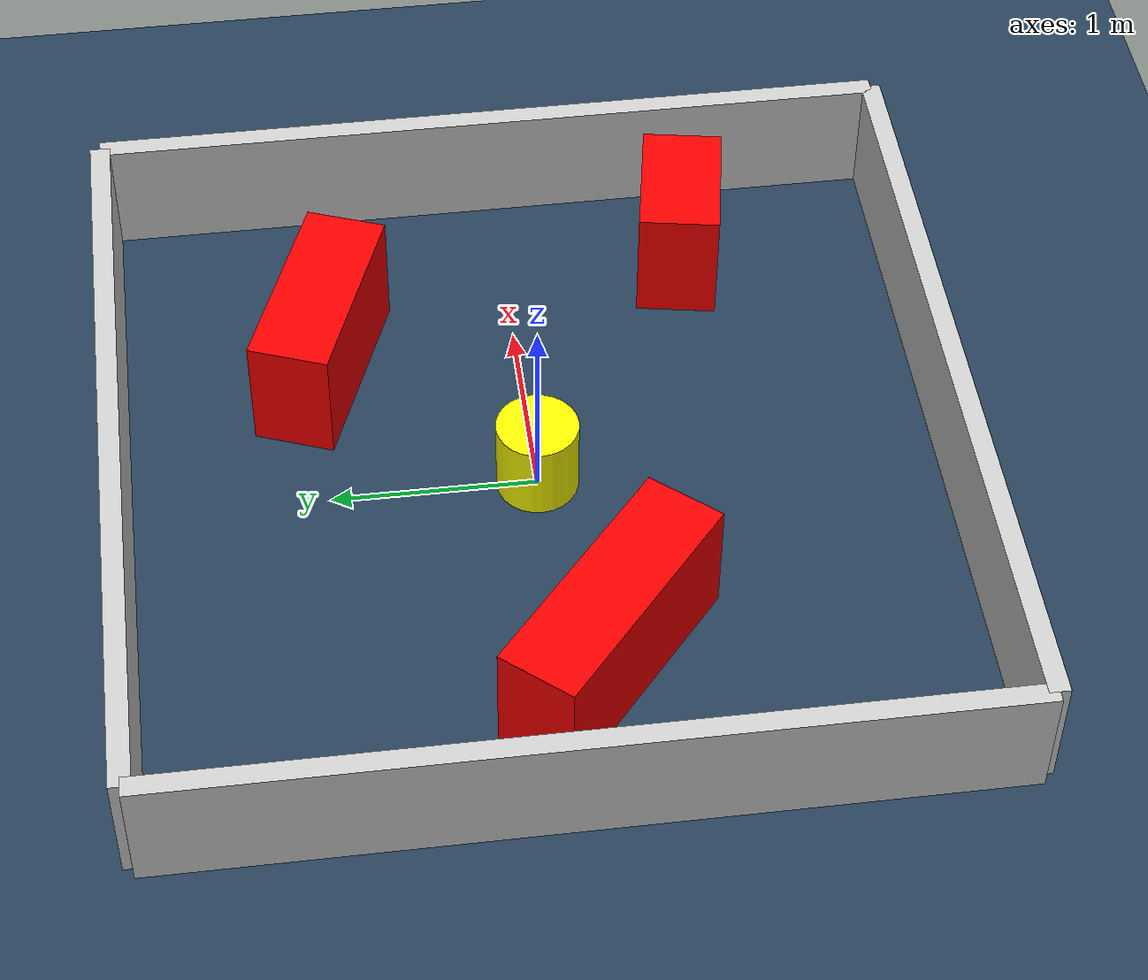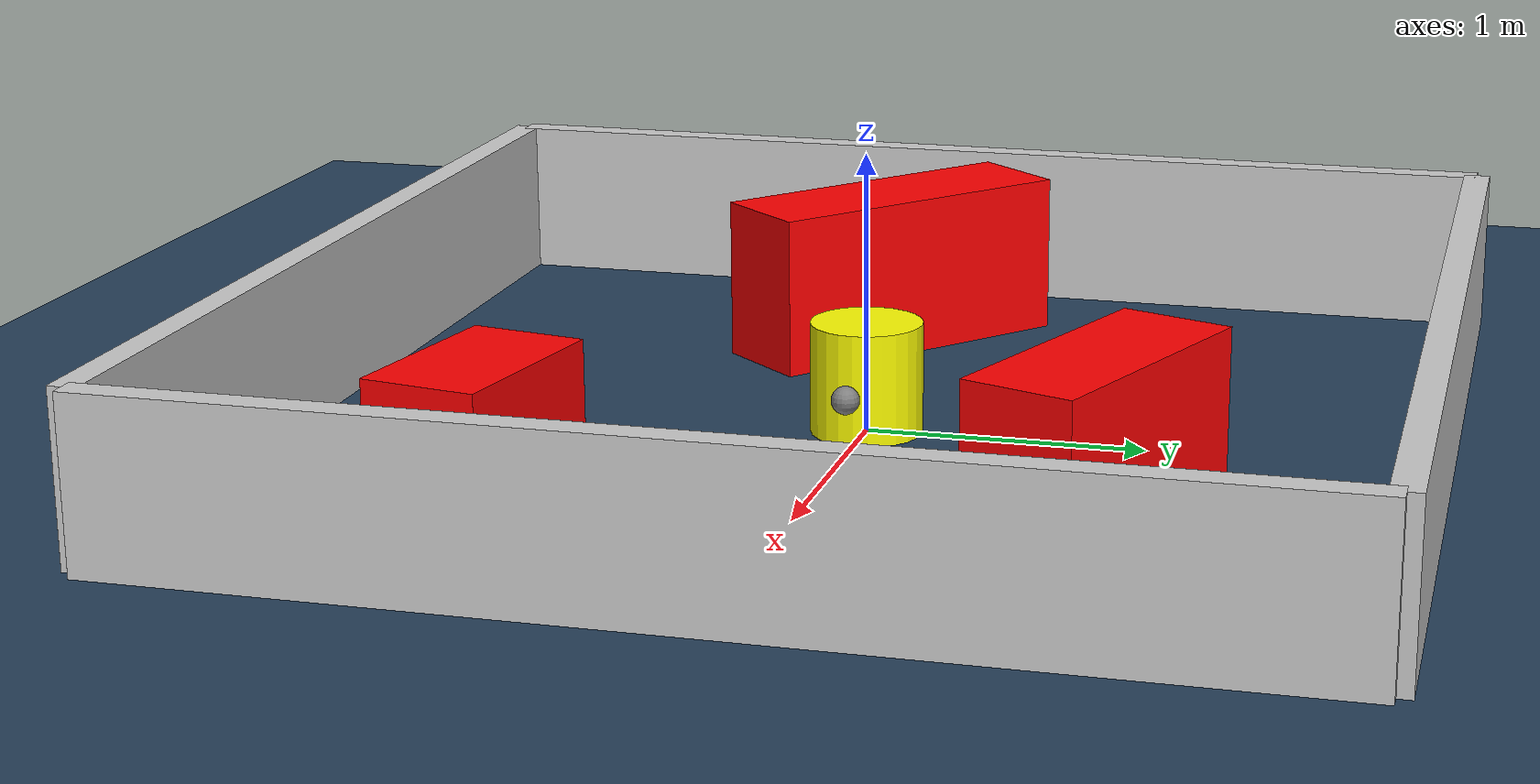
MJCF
<?xml version="1.0" ?>
<mujoco model="generated_environment">
  <option timestep="0.01" integrator="RK4" cone="elliptic"/>
  <default>
    <geom density="1"/>
  </default>
  <asset>
    <texture builtin="gradient" height="3072" rgb1="0.3 0.5 0.7" rgb2="0 0 0" type="skybox" width="512"/>
    <texture builtin="checker" height="300" mark="edge" markrgb="0.8 0.8 0.8" name="groundplane" rgb1="0.2 0.3 0.4" rgb2="0.1 0.2 0.3" type="2d" width="300"/>
    <material name="groundplane" reflectance="0.2" texrepeat="5 5" texture="groundplane" texuniform="true"/>
    <material name="robot" rgba="0.0 1.0 0.0 1"/>
  </asset>
  <worldbody>
    <light dir="0 0 -1" directional="true" pos="0 0 1.5"/>
    <geom condim="4" friction="1.0 0.005 0.001" material="groundplane" name="floor" size="0 0 0.05" type="plane"/>
    <body name="walls">
      <geom name="wall_1" condim="4" pos="-2.0 0.0 0.3" rgba="0.800000011920929 0.800000011920929 0.800000011920929 1.0" size="0.05 2.0 0.3" type="box"/>
      <geom name="wall_2" condim="4" pos="2.0 0.0 0.3" rgba="0.800000011920929 0.800000011920929 0.800000011920929 1.0" size="0.05 2.0 0.3" type="box"/>
      <geom name="wall_3" condim="4" pos="0.0 -2.0 0.3" rgba="0.800000011920929 0.800000011920929 0.800000011920929 1.0" size="2.0 0.05 0.3" type="box"/>
      <geom name="wall_4" condim="4" pos="0.0 2.0 0.3" rgba="0.800000011920929 0.800000011920929 0.800000011920929 1.0" size="2.0 0.05 0.3" type="box"/>
    </body>
    <body name="robot">
      <joint name="joint_x" type="slide" pos="0 0 0" axis="1 0 0"/>
      <joint name="joint_y" type="slide" pos="0 0 0" axis="0 1 0"/>
      <geom name="robot" type="sphere" pos="0.3 0.0 0.2" size="0.05" mass="5." friction="1.0 0.005 0.0001" condim="4" rgba="0.5 0.5 0.5 1.0"/>
      <site name="sensor_ball"/>
    </body>
    <body name="obstacle_movable_1">
      <geom name="obstacle_movable_1" condim="4" pos="0.0 0.0 0.2" euler="0 0 0.0" friction="1.0 0.005 0.001" rgba="1.0 1.0 0.0 1.0" size="0.2 0.2 0.0" type="cylinder" mass="0.1"/>
      <joint type="free"/>
    </body>
    <body name="obstacle_2_static">
      <geom name="obstacle_2_static" condim="4" pos="1.4101954789580287 -0.9066867324237198 0.3" euler="0 0 169.6851394764769" friction="1.0 0.005 0.001" rgba="1 0 0 1" size="0.33146253168987544 0.2 0.3" type="box"/>
    </body>
    <body name="obstacle_3_static">
      <geom name="obstacle_3_static" condim="4" pos="0.863138475628731 0.971500694884172 0.3" euler="0 0 159.03262217117103" friction="1.0 0.005 0.001" rgba="1 0 0 1" size="0.4977044022396718 0.2 0.3" type="box"/>
    </body>
    <body name="obstacle_4_static">
      <geom name="obstacle_4_static" condim="4" pos="-1.1712228701731788 -0.1897888441310871 0.3" euler="0 0 319.4746504157824" friction="1.0 0.005 0.001" rgba="1 0 0 1" size="0.6211457173185165 0.2 0.3" type="box"/>
    </body>
  </worldbody>
  <actuator>
    <motor name="actuator_x" joint="joint_x" gear="1" ctrlrange="-1 1"/>
    <motor name="actuator_y" joint="joint_y" gear="1" ctrlrange="-1 1"/>
  </actuator>
</mujoco>
